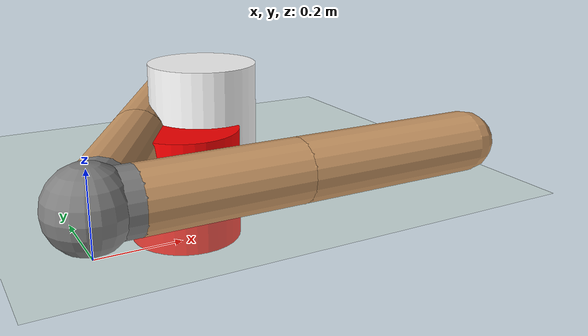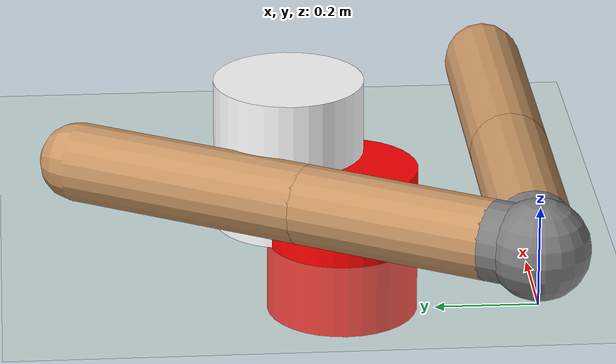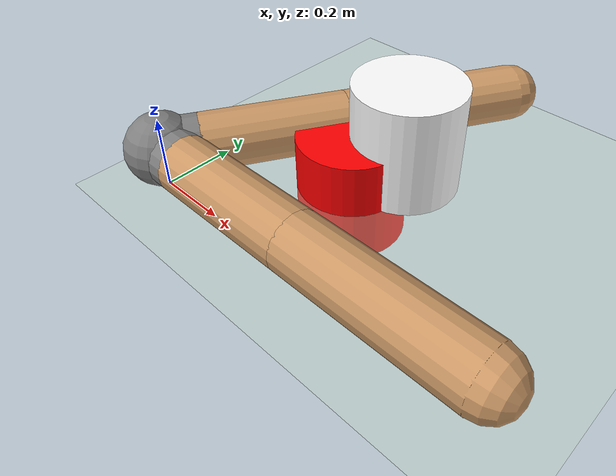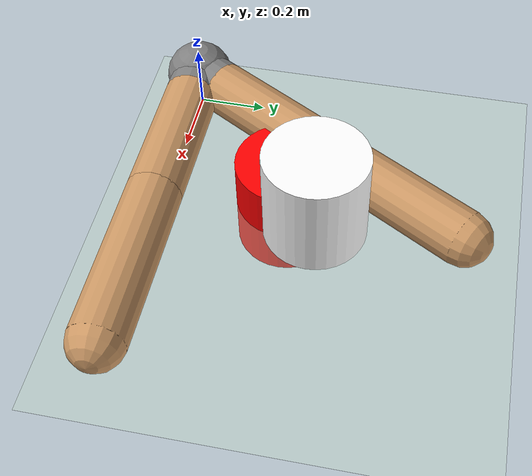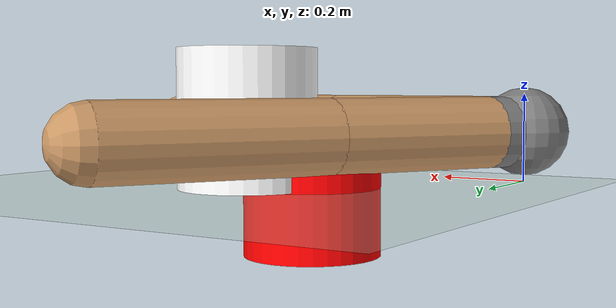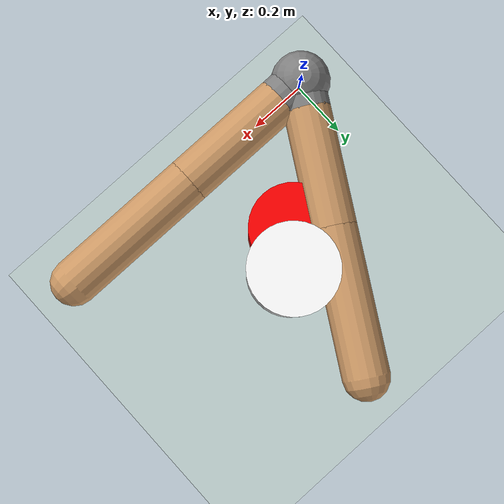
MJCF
<?xml version="1.0" encoding="utf-8"?>
<mujoco model="planar_gripper">
	<compiler angle="degree" coordinate="local" inertiafromgeom="true"/>
	<option integrator="RK4" timestep="0.01"/>
	<custom>
        <numeric name="init_qpos" data="0. 0.5 -0.6 0. -0.5 0.6"/>
	</custom>
	<default class="geom0">
		<joint armature="1" damping="1" limited="true"/>
		<geom conaffinity="1" contype="1" condim="3" density="5.0" friction="1 0.5 0.5" margin="0.001" rgba="0.8 0.6 0.4 1"/>
	</default>
	<asset>
		<texture builtin="gradient" height="100" rgb1="1 1 1" rgb2="0 0 0" type="skybox" width="100"/>
		<texture builtin="flat" height="1278" mark="cross" markrgb="1 1 1" name="texgeom" random="0.01" rgb1="0.8 0.6 0.4" rgb2="0.8 0.6 0.4" type="cube" width="127"/>
		<texture builtin="checker" height="100" name="texplane" rgb1="0 0 0" rgb2="0.8 0.8 0.8" type="2d" width="100"/>
		<material name="MatPlane" reflectance="0.5" shininess="1" specular="1" texrepeat="60 60" texture="texplane"/>
		<material name="geom" texture="texgeom" texuniform="true"/>
        <mesh name="cylinder" file="cylinder.stl"/>
	</asset>
	<worldbody>
		<light cutoff="100" diffuse="1 1 1" dir="0 0 -1.3" directional="true" exponent="1" pos="0 0 1.3" specular="0.1 0.1 0.1"/>
		<geom conaffinity="1" condim="3" material="MatPlane" name="floor" pos="0 0 0" rgba="0.8 0.9 0.8 1" size="40 40 40" type="plane"/>
		<body name="root" pos="0 0 0.115">
			<camera mode="trackcom" name="track" pos="0 -3 0.3" xyaxes="1 0 0 0 0 1"/>
			<geom name="root_geom" pos="0 0 0" size="0.1" type="sphere"/>
            <joint armature="0" damping="0" limited="true" range="0 0" margin="0.01" name="root" pos="0 0 0" type="hinge"/>
			<body name="left_finger" pos="0 0 0" euler="0 0 60">
				<joint name="aux_joint_left_finger" range="-1 1"/>
                <geom fromto="0 0 0 0.1 0 0" name="aux_geom_left_finger" size="0.08" type="capsule"/>
				<body name="proximal_body_left_finger" pos="0.1 0 0">
					<joint axis="0 0 1" name="proximal_joint_left_finger" pos="0.0 0.0 0.0" range="-30 30" type="hinge"/>
					<geom class="geom0" fromto="0.0 0.0 0.0 0.4 0.0 0.0" name="proximal_geom_left_finger" size="0.08" type="capsule"/>
					<body name="distal_body_left_finger" pos="0.4 0.0 0">
						<joint axis="0 0 1" name="distal_joint_left_finger" pos="0.0 0.0 0.0" range="-30 30" type="hinge"/>
						<geom class="geom0" fromto="0.0 0.0 0.0 0.5 0.0 0.0" name="distal_geom_left_finger" size="0.08" type="capsule"/>
					</body>
				</body>
			</body>
			<body name="right_finger" pos="0 0 0" euler="0 0 0.0">
				<joint name="aux_joint_right_finger" range="-1 1"/>
				<geom fromto="0 0 0 0.1 0 0" name="aux_geom_right_finger" size="0.08" type="capsule"/>
				<body name="proximal_body_right_finger" pos="0.1 0 0">
					<joint axis="0 0 1" name="proximal_joint_right_finger" pos="0.0 0.0 0.0" range="-30 30" type="hinge"/>
					<geom class="geom0" fromto="0.0 0.0 0.0 0.4 0.0 0.0" name="proximal_geom_right_finger" size="0.08" type="capsule"/>
					<body name="distal_body_right_finger" pos="0.4 0.0 0">
						<joint axis="0 0 1" name="distal_joint_right_finger" pos="0.0 0.0 0.0" range="-30 30" type="hinge"/>
						<geom class="geom0" fromto="0.0 0.0 0.0 0.5 0.0 0.0" name="distal_geom_right_finger" size="0.08" type="capsule"/>
					</body>
				</body>
			</body>
		</body>

    <body name="object" pos="0.45 0.45 0.15" >
      <geom class="geom0" name="obj_com" rgba="1 1 1 0" type="sphere" size="0.15 0.15 0.15" density="0.001" contype="1" conaffinity="0"/>
      <geom class="geom0" name="obj_surface" rgba="1 1 1 1" type="mesh" mesh="cylinder" size="0.15 0.15 0.15" density="0.001" contype="1" conaffinity="0"/>
      <joint name="obj_slidey" type="slide" pos="0 0 0" axis="0 1 0" range="-10.3213 10.3" damping="0.5"/>
      <joint name="obj_slidex" type="slide" pos="0 0 0" axis="1 0 0" range="-10.3213 10.3" damping="0.5"/>
      <joint name="obj_theta" type="hinge" pos="0 0 0" axis="1 0 0" range="-180 180" damping="0.5"/>
    </body>

    <body name="goal" pos="0.35 0.35 0">
      <geom rgba="1 0 0 1" name="goal_surface" type="mesh" mesh="cylinder" size="0.08 0.001 0.1" density='0.00001' contype="0" conaffinity="0"/>
      <joint name="goal_slidey" type="slide" pos="0 0 0" axis="0 1 0" range="-10.3213 10.3" damping="0.5"/>
      <joint name="goal_slidex" type="slide" pos="0 0 0" axis="1 0 0" range="-10.3213 10.3" damping="0.5"/>
      <joint name="goal_theta" type="hinge" pos="0 0 0" axis="1 0 0" range="-180 180" damping="0.5"/>
    </body>
	</worldbody>
	<actuator>
		<motor ctrllimited="true" ctrlrange="-1.0 1.0" gear="150" joint="proximal_joint_left_finger"/>
		<motor ctrllimited="true" ctrlrange="-1.0 1.0" gear="150" joint="distal_joint_left_finger"/>
		<motor ctrllimited="true" ctrlrange="-1.0 1.0" gear="150" joint="proximal_joint_right_finger"/>
		<motor ctrllimited="true" ctrlrange="-1.0 1.0" gear="150" joint="distal_joint_right_finger"/>
	</actuator>
</mujoco>
